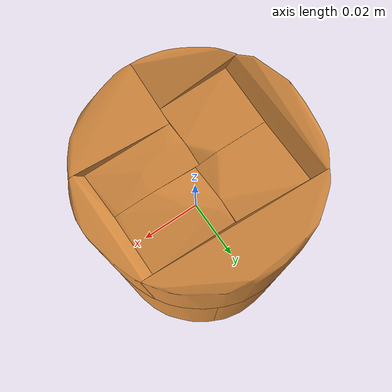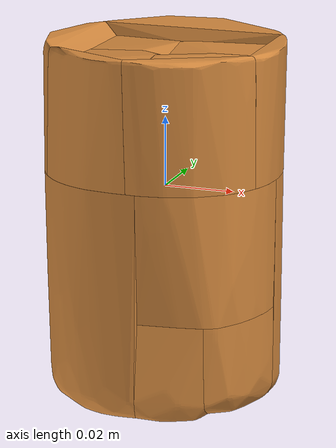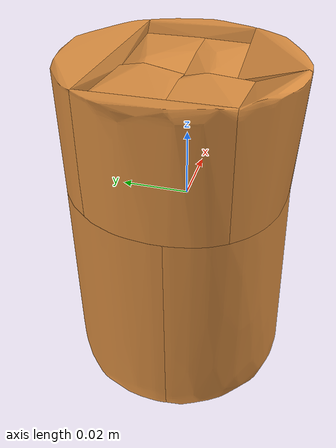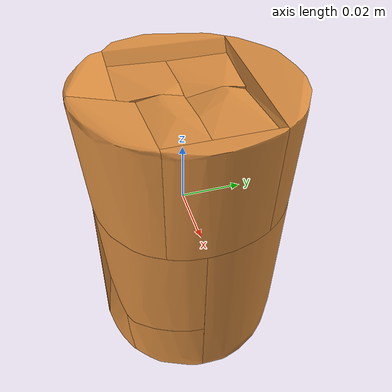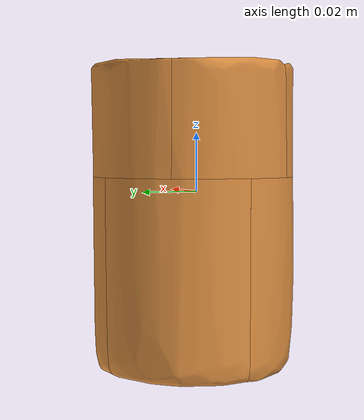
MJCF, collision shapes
<mujoco model="tomato_soup_can">
  <compiler angle="radian"/>

  <asset>
    <material name="object" rgba="0.85 0.55 0.25 1"/>
    <mesh name="object_visual_mesh" file="source/top_watertight_tiny.obj"/>
    <mesh name="object_collision_mesh_000" file="collision/hull_000.obj"/>
    <mesh name="object_collision_mesh_001" file="collision/hull_001.obj"/>
    <mesh name="object_collision_mesh_002" file="collision/hull_002.obj"/>
    <mesh name="object_collision_mesh_003" file="collision/hull_003.obj"/>
    <mesh name="object_collision_mesh_004" file="collision/hull_004.obj"/>
    <mesh name="object_collision_mesh_005" file="collision/hull_005.obj"/>
    <mesh name="object_collision_mesh_006" file="collision/hull_006.obj"/>
    <mesh name="object_collision_mesh_007" file="collision/hull_007.obj"/>
    <mesh name="object_collision_mesh_008" file="collision/hull_008.obj"/>
    <mesh name="object_collision_mesh_009" file="collision/hull_009.obj"/>
    <mesh name="object_collision_mesh_010" file="collision/hull_010.obj"/>
    <mesh name="object_collision_mesh_011" file="collision/hull_011.obj"/>
    <mesh name="object_collision_mesh_012" file="collision/hull_012.obj"/>
    <mesh name="object_collision_mesh_013" file="collision/hull_013.obj"/>
    <mesh name="object_collision_mesh_014" file="collision/hull_014.obj"/>
    <mesh name="object_collision_mesh_015" file="collision/hull_015.obj"/>
  </asset>

  <worldbody>
    <body name="object">
      <inertial pos="-0.000433971 0.00179528 -0.00929583" quat="0.694997 0.00342163 0.00100402 0.719004" mass="0.24875" diaginertia="0.000249834 0.00024796 0.000135219"/>
      <joint name="object_joint" type="free" damping="1e-05 1e-05 1e-05"/>
      <geom name="object_visual" type="mesh" contype="0" conaffinity="0" mass="0" material="object" rgba="1 0.423529 0.0392157 1" mesh="object_visual_mesh"/>
      <geom name="object_collision" type="mesh" condim="6" friction="0.2" mass="0" material="object" mesh="object_collision_mesh_000"/>
      <geom name="object_collision_001" type="mesh" condim="6" friction="0.2" mass="0" material="object" mesh="object_collision_mesh_001"/>
      <geom name="object_collision_002" type="mesh" condim="6" friction="0.2" mass="0" material="object" mesh="object_collision_mesh_002"/>
      <geom name="object_collision_003" type="mesh" condim="6" friction="0.2" mass="0" material="object" mesh="object_collision_mesh_003"/>
      <geom name="object_collision_004" type="mesh" condim="6" friction="0.2" mass="0" material="object" mesh="object_collision_mesh_004"/>
      <geom name="object_collision_005" type="mesh" condim="6" friction="0.2" mass="0" material="object" mesh="object_collision_mesh_005"/>
      <geom name="object_collision_006" type="mesh" condim="6" friction="0.2" mass="0" material="object" mesh="object_collision_mesh_006"/>
      <geom name="object_collision_007" type="mesh" condim="6" friction="0.2" mass="0" material="object" mesh="object_collision_mesh_007"/>
      <geom name="object_collision_008" type="mesh" condim="6" friction="0.2" mass="0" material="object" mesh="object_collision_mesh_008"/>
      <geom name="object_collision_009" type="mesh" condim="6" friction="0.2" mass="0" material="object" mesh="object_collision_mesh_009"/>
      <geom name="object_collision_010" type="mesh" condim="6" friction="0.2" mass="0" material="object" mesh="object_collision_mesh_010"/>
      <geom name="object_collision_011" type="mesh" condim="6" friction="0.2" mass="0" material="object" mesh="object_collision_mesh_011"/>
      <geom name="object_collision_012" type="mesh" condim="6" friction="0.2" mass="0" material="object" mesh="object_collision_mesh_012"/>
      <geom name="object_collision_013" type="mesh" condim="6" friction="0.2" mass="0" material="object" mesh="object_collision_mesh_013"/>
      <geom name="object_collision_014" type="mesh" condim="6" friction="0.2" mass="0" material="object" mesh="object_collision_mesh_014"/>
      <geom name="object_collision_015" type="mesh" condim="6" friction="0.2" mass="0" material="object" mesh="object_collision_mesh_015"/>
    </body>
  </worldbody>
</mujoco>
